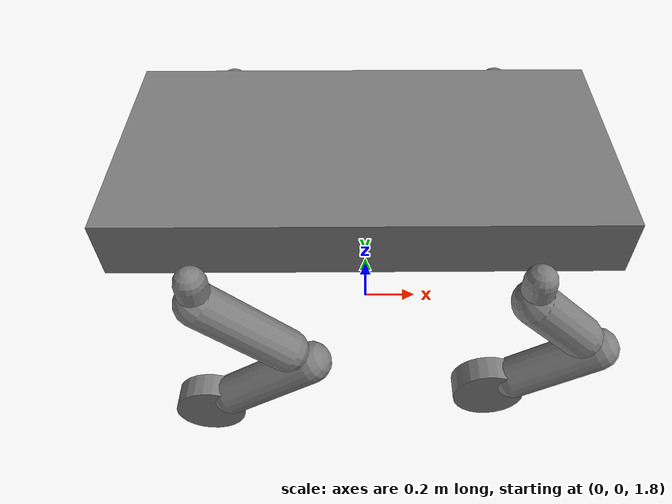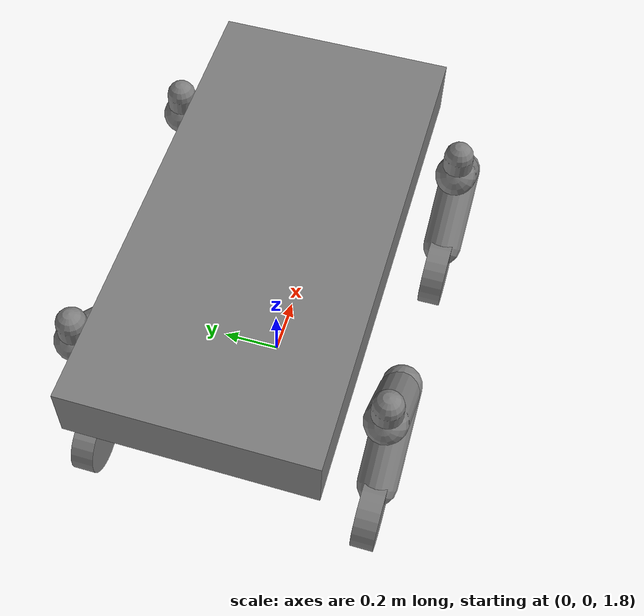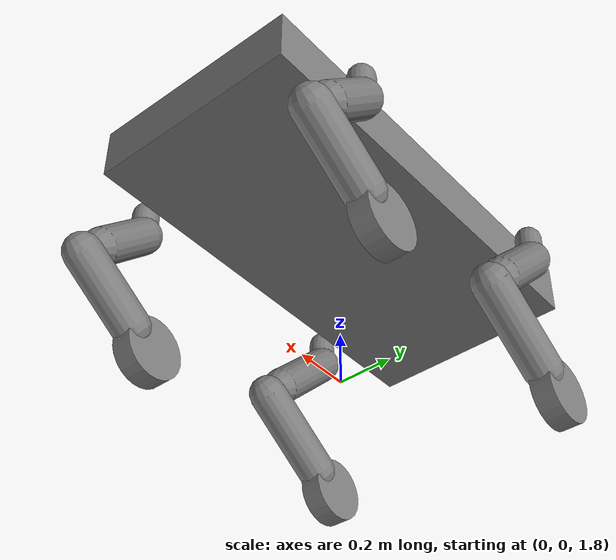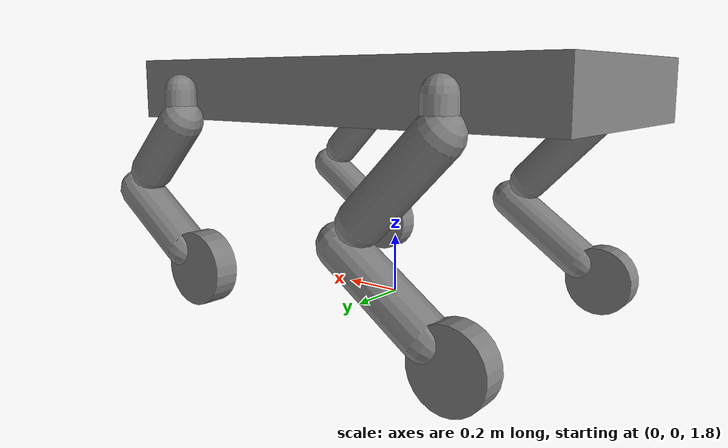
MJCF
<mujoco model="xmlrobot86_0">
	<compiler inertiafromgeom="true" />
	<option gravity="0 0 -9.8" />
	<size nconmax="500" njmax="1000" />
	<custom />
	<default />
	<asset />
	<worldbody>
		<body name="root" pos="0 0 2.5" quat="0.707 0.0 0.0 -0.707">
			<geom density="5.0" friction="1.5 0.005 0.0001" name="geomroot" pos="-0.02 0 0.07" size="0.15 0.15 0.02" type="box" quat="1.0 0.0 0.0 0.0" />
			<body name="body1" pos="0 0 0" quat="1.0 0.0 0.0 0.0">
				<geom density="5.0" friction="1.5 0.005 0.0001" name="geombody1" pos="-0.02 0 0" size="0.4 0.8 0.1" type="box" quat="1.0 0.0 0.0 0.0" />
				<joint armature="0.005" axis="0 0 1" damping="1.0" limited="true" name="joint_joint1" pos="0 0 0" range="-5 5" stiffness="2.0" type="hinge" />
				<body name="limbmount4" pos="0.5 -0.5 0" quat="0.70711 0.0 0.70711 0.0">
					<geom density="500" friction="1.5 0.005 0.0001" fromto="0 0 0 0.05 0 0" name="geomlimbmount4" size="0.05" type="capsule" quat="1.0 0.0 0.0 0.0" />
					<joint armature="0.005" axis="0 1 0" damping="1.0" limited="true" name="joint_joint5" pos="0 0 0" range="-5 5" stiffness="2.0" type="hinge" />
					<body name="limbmount4_new_new" pos="0.1 0 0" quat="0.92388 0.0 0.0 0.38268">
						<geom density="500" friction="1.5 0.005 0.0001" fromto="0 0 0 0.35 0 0" name="geomlimbmount4_new_new" size="0.07" type="capsule" quat="1.0 0.0 0.0 0.0" />
						<joint armature="0.005" axis="0 0 1" damping="1.0" limited="true" name="joint_limbmount4_new" pos="0 0 0" range="-45 45" stiffness="2.0" type="hinge" />
						<body name="limbmount4_new_new_new_new" pos="0.44999999999999996 0 0" quat="0.64279 0.0 0.0 -0.76604">
							<geom density="500" friction="1.5 0.005 0.0001" fromto="0 0 0 0.35 0 0" name="geomlimbmount4_new_new_new_new" size="0.07" type="capsule" quat="1.0 0.0 0.0 0.0" />
							<joint armature="0.005" axis="0 0 1" damping="1.0" limited="true" name="joint_limbmount4_new_new_new" pos="0 0 0" range="-45 45" stiffness="2.0" type="hinge" />
							<body name="limbmount4_new_new_new_new_new_new" pos="0.44999999999999996 0 -0.04" quat="0.70711 0.0 -0.70711 0.0">
								<geom density="500" friction="1.5 0.005 0.0001" fromto="0 0 0 0.08 0 0" name="geomlimbmount4_new_new_new_new_new_new" pos="0 0 0" size="0.12" type="cylinder" euler="0 0 0" />
								<joint armature="0.005" axis="1 0 0" damping="1.0" name="joint_limbmount4_new_new_new_new_new" pos="0 0 0" stiffness="2.0" type="hinge" />
							</body>
						</body>
					</body>
				</body>
				<body name="limbmount3" pos="-0.5 -0.5 0" quat="0.70711 0.0 0.70711 0.0">
					<geom density="500" friction="1.5 0.005 0.0001" fromto="0 0 0 0.05 0 0" name="geomlimbmount3" size="0.05" type="capsule" quat="1.0 0.0 0.0 0.0" />
					<joint armature="0.005" axis="0 1 0" damping="1.0" limited="true" name="joint_joint4" pos="0 0 0" range="-5 5" stiffness="2.0" type="hinge" />
					<body name="upper_link_f3" pos="0.1 0 0" quat="0.92388 0.0 0.0 0.38268">
						<geom density="500" friction="1.5 0.005 0.0001" fromto="0 0 0 0.35 0 0" name="geomupper_link_f3" size="0.07" type="capsule" quat="1.0 0.0 0.0 0.0" />
						<joint armature="0.005" axis="0 0 1" damping="1.0" limited="true" name="joint_joint9" pos="0 0 0" range="-45 45" stiffness="2.0" type="hinge" />
						<body name="lower_link_b2" pos="0.44999999999999996 0 0" quat="0.64279 0.0 0.0 -0.76604">
							<geom density="500" friction="1.5 0.005 0.0001" fromto="0 0 0 0.35 0 0" name="geomlower_link_b2" size="0.07" type="capsule" quat="1.0 0.0 0.0 0.0" />
							<joint armature="0.005" axis="0 0 1" damping="1.0" limited="true" name="joint_joint11" pos="0 0 0" range="-45 45" stiffness="2.0" type="hinge" />
							<body name="wheel_link_end2" pos="0.44999999999999996 0 -0.04" quat="0.70711 0.0 -0.70711 0.0">
								<geom density="500" friction="1.5 0.005 0.0001" fromto="0 0 0 0.08 0 0" name="geomwheel_link_end2" pos="0 0 0" size="0.12" type="cylinder" euler="0 0 0" />
								<joint armature="0.005" axis="1 0 0" damping="1.0" name="joint_joint15" pos="0 0 0" stiffness="2.0" type="hinge" />
							</body>
						</body>
					</body>
				</body>
				<body name="limbmount2" pos="-0.5 0.5 0" quat="0.70711 0.0 0.70711 0.0">
					<geom density="500" friction="1.5 0.005 0.0001" fromto="0 0 0 0.05 0 0" name="geomlimbmount2" size="0.05" type="capsule" quat="1.0 0.0 0.0 0.0" />
					<joint armature="0.005" axis="0 1 0" damping="1.0" limited="true" name="joint_joint3" pos="0 0 0" range="-5 5" stiffness="2.0" type="hinge" />
					<body name="limbmount2_new_new" pos="0.1 0 0" quat="0.92388 0.0 0.0 0.38268">
						<geom density="500" friction="1.5 0.005 0.0001" fromto="0 0 0 0.25 0 0" name="geomlimbmount2_new_new" size="0.07" type="capsule" quat="1.0 0.0 0.0 0.0" />
						<joint armature="0.005" axis="0 0 1" damping="1.0" limited="true" name="joint_limbmount2_new" pos="0 0 0" range="-45 45" stiffness="2.0" type="hinge" />
						<body name="limbmount2_new_new_new_new" pos="0.35 0 0" quat="0.64279 0.0 0.0 -0.76604">
							<geom density="500" friction="1.5 0.005 0.0001" fromto="0 0 0 0.3 0 0" name="geomlimbmount2_new_new_new_new" size="0.07" type="capsule" quat="1.0 0.0 0.0 0.0" />
							<joint armature="0.005" axis="0 0 1" damping="1.0" limited="true" name="joint_limbmount2_new_new_new" pos="0 0 0" range="-45 45" stiffness="2.0" type="hinge" />
							<body name="limbmount2_new_new_new_new_new_new" pos="0.4 0 -0.04" quat="0.70711 0.0 -0.70711 0.0">
								<geom density="500" friction="1.5 0.005 0.0001" fromto="0 0 0 0.08 0 0" name="geomlimbmount2_new_new_new_new_new_new" pos="0 0 0" size="0.12" type="cylinder" euler="0 0 0" />
								<joint armature="0.005" axis="1 0 0" damping="1.0" name="joint_limbmount2_new_new_new_new_new" pos="0 0 0" stiffness="2.0" type="hinge" />
							</body>
						</body>
					</body>
				</body>
				<body name="limbmount1" pos="0.5 0.5 0" quat="0.70711 0.0 0.70711 0.0">
					<geom density="500" friction="1.5 0.005 0.0001" fromto="0 0 0 0.05 0 0" name="geomlimbmount1" size="0.05" type="capsule" quat="1.0 0.0 0.0 0.0" />
					<joint armature="0.005" axis="0 1 0" damping="1.0" limited="true" name="joint_joint2" pos="0 0 0" range="-5 5" stiffness="2.0" type="hinge" />
					<body name="upper_link_f1" pos="0.1 0 0" quat="0.92388 0.0 0.0 0.38268">
						<geom density="500" friction="1.5 0.005 0.0001" fromto="0 0 0 0.25 0 0" name="geomupper_link_f1" size="0.07" type="capsule" quat="1.0 0.0 0.0 0.0" />
						<joint armature="0.005" axis="0 0 1" damping="1.0" limited="true" name="joint_joint7" pos="0 0 0" range="-45 45" stiffness="2.0" type="hinge" />
						<body name="lower_link_b3" pos="0.35 0 0" quat="0.64279 0.0 0.0 -0.76604">
							<geom density="500" friction="1.5 0.005 0.0001" fromto="0 0 0 0.3 0 0" name="geomlower_link_b3" size="0.07" type="capsule" quat="1.0 0.0 0.0 0.0" />
							<joint armature="0.005" axis="0 0 1" damping="1.0" limited="true" name="joint_joint13" pos="0 0 0" range="-45 45" stiffness="2.0" type="hinge" />
							<body name="wheel_link_end4" pos="0.4 0 -0.04" quat="0.70711 0.0 -0.70711 0.0">
								<geom density="500" friction="1.5 0.005 0.0001" fromto="0 0 0 0.08 0 0" name="geomwheel_link_end4" pos="0 0 0" size="0.12" type="cylinder" euler="0 0 0" />
								<joint armature="0.005" axis="1 0 0" damping="1.0" name="joint_joint17" pos="0 0 0" stiffness="2.0" type="hinge" />
							</body>
						</body>
					</body>
				</body>
			</body>
		</body>
	</worldbody>
	<actuator>
		<motor ctrllimited="true" ctrlrange="-1 1" gear="22.5" joint="joint_joint1" />
		<motor ctrllimited="true" ctrlrange="-1 1" gear="45" joint="joint_joint5" />
		<motor ctrllimited="true" ctrlrange="-1 1" gear="45" joint="joint_limbmount4_new" />
		<motor ctrllimited="true" ctrlrange="-1 1" gear="45" joint="joint_limbmount4_new_new_new" />
		<motor ctrllimited="true" ctrlrange="-1 1" gear="45" joint="joint_limbmount4_new_new_new_new_new" />
		<motor ctrllimited="true" ctrlrange="-1 1" gear="45" joint="joint_joint4" />
		<motor ctrllimited="true" ctrlrange="-1 1" gear="45" joint="joint_joint9" />
		<motor ctrllimited="true" ctrlrange="-1 1" gear="45" joint="joint_joint11" />
		<motor ctrllimited="true" ctrlrange="-1 1" gear="45" joint="joint_joint15" />
		<motor ctrllimited="true" ctrlrange="-1 1" gear="45" joint="joint_joint3" />
		<motor ctrllimited="true" ctrlrange="-1 1" gear="45" joint="joint_limbmount2_new" />
		<motor ctrllimited="true" ctrlrange="-1 1" gear="45" joint="joint_limbmount2_new_new_new" />
		<motor ctrllimited="true" ctrlrange="-1 1" gear="45" joint="joint_limbmount2_new_new_new_new_new" />
		<motor ctrllimited="true" ctrlrange="-1 1" gear="45" joint="joint_joint2" />
		<motor ctrllimited="true" ctrlrange="-1 1" gear="45" joint="joint_joint7" />
		<motor ctrllimited="true" ctrlrange="-1 1" gear="45" joint="joint_joint13" />
		<motor ctrllimited="true" ctrlrange="-1 1" gear="45" joint="joint_joint17" />
	</actuator>
</mujoco>
